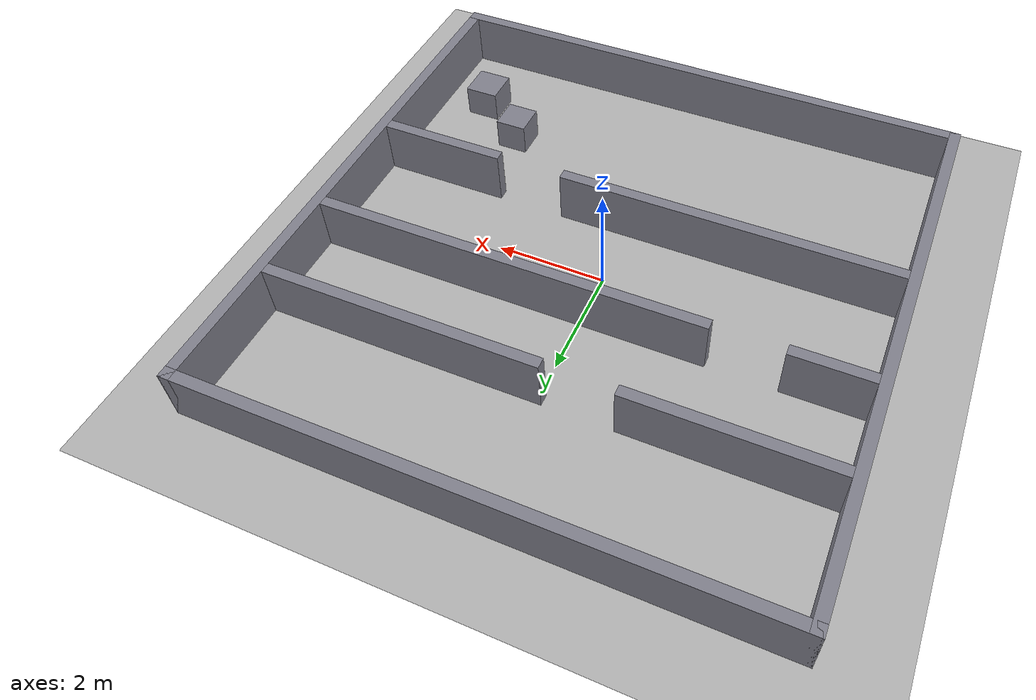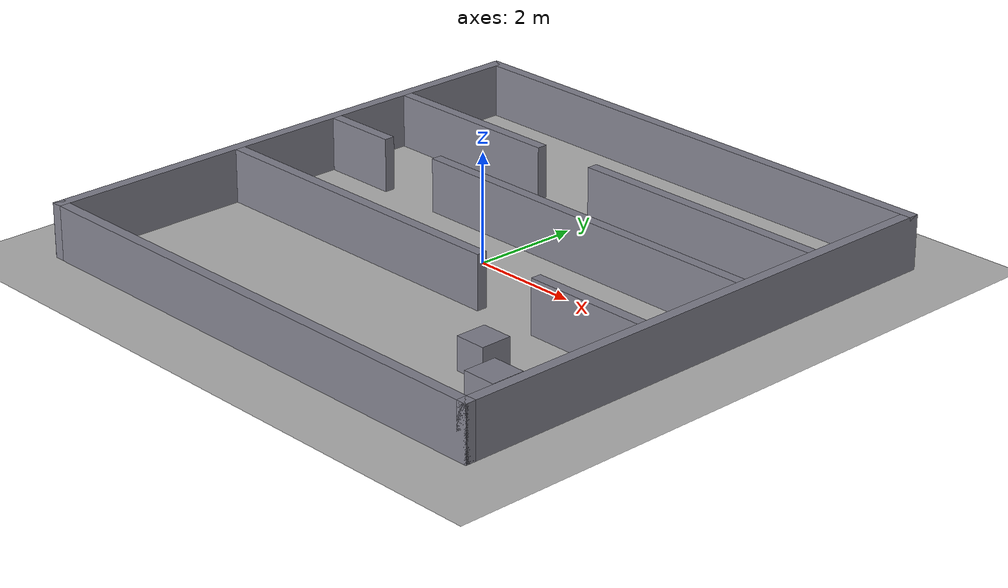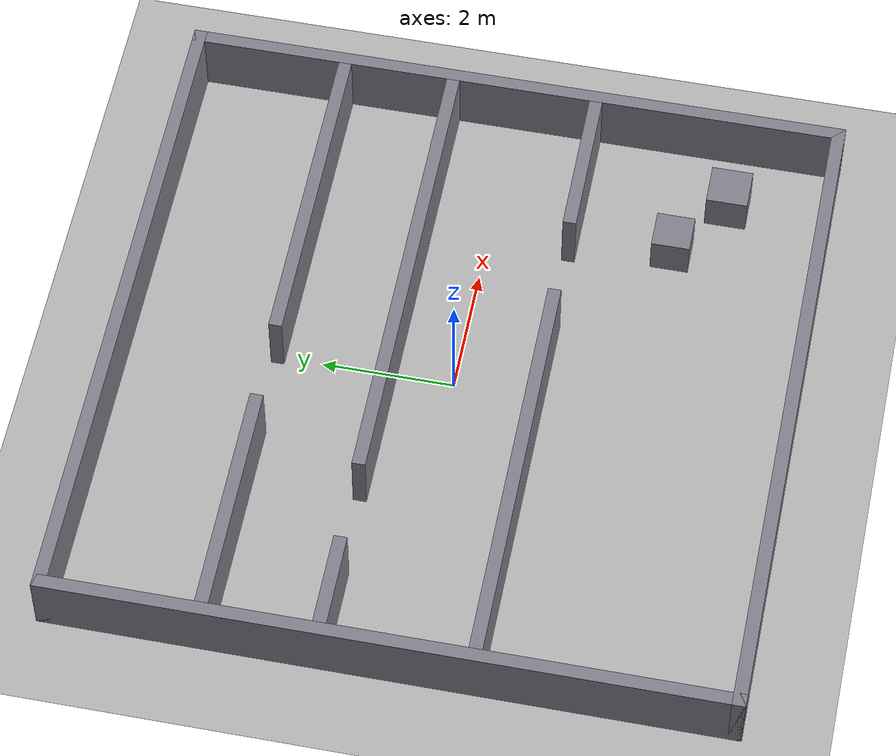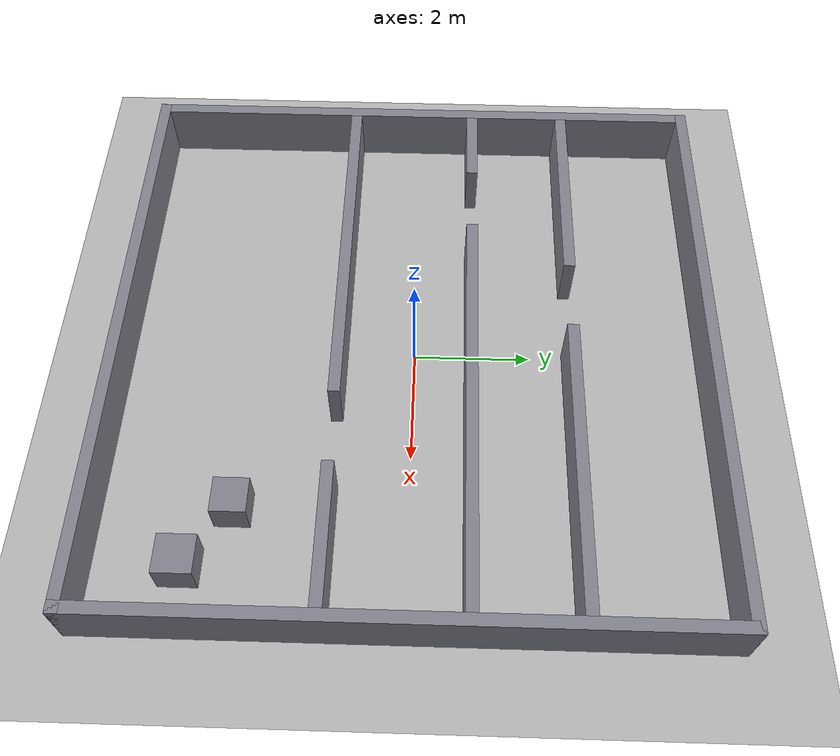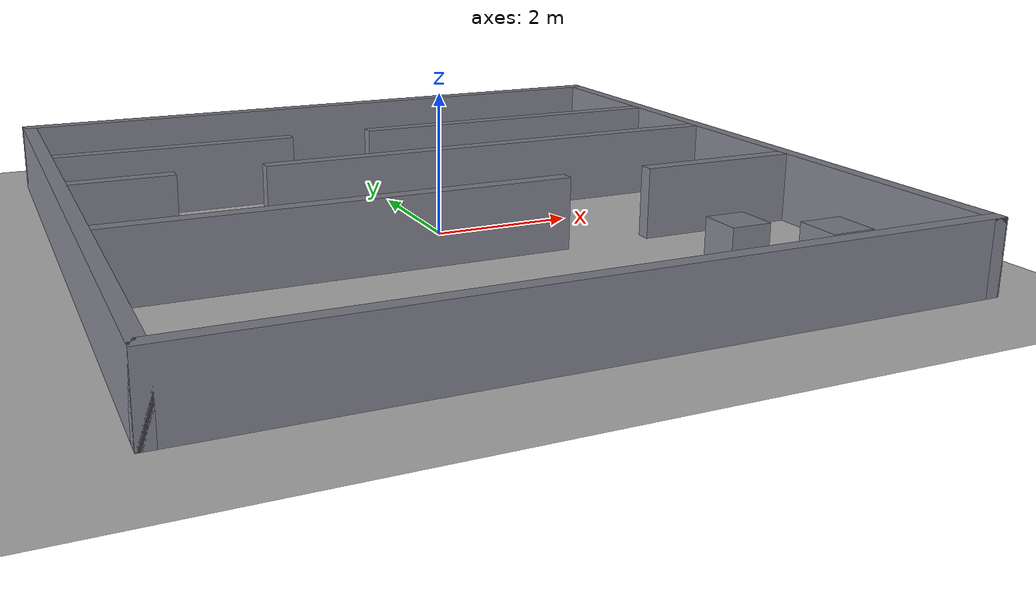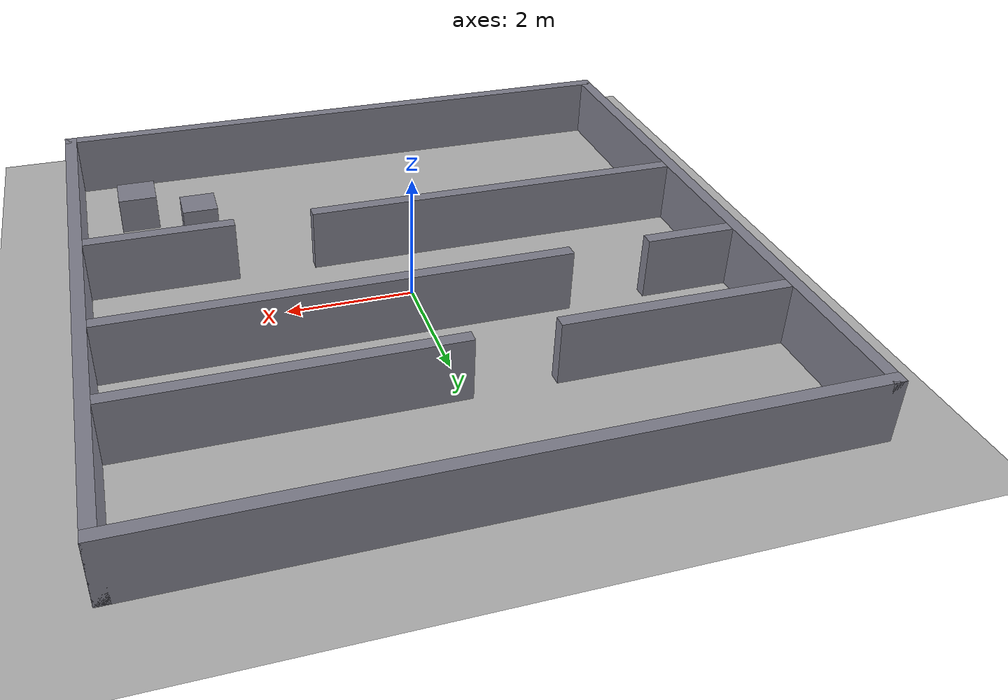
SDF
<?xml version="1.0"?>
<sdf version="1.10">
  <world name="scenario_17">
    <physics name="fast" type="ignored">
      <max_step_size>0.005</max_step_size>
      <real_time_factor>1.0</real_time_factor>
      <real_time_update_rate>200</real_time_update_rate>
    </physics>
    <plugin filename="gz-sim-physics-system" name="gz::sim::systems::Physics"/>
    <plugin filename="gz-sim-user-commands-system" name="gz::sim::systems::UserCommands"/>
    <plugin filename="gz-sim-scene-broadcaster-system" name="gz::sim::systems::SceneBroadcaster"/>
    <plugin filename="gz-sim-sensors-system" name="gz::sim::systems::Sensors">
      <render_engine>ogre2</render_engine>
    </plugin>
    <light type="directional" name="sun">
      <cast_shadows>false</cast_shadows>
      <pose>0 0 10 0 0 0</pose>
      <diffuse>0.9 0.9 0.9 1</diffuse>
      <direction>-0.5 0.2 -0.9</direction>
    </light>
    <model name="ground_plane">
      <static>true</static>
      <link name="link">
        <collision name="c"><geometry><plane><normal>0 0 1</normal><size>20 20</size></plane></geometry></collision>
        <visual name="v"><geometry><plane><normal>0 0 1</normal><size>20 20</size></plane></geometry>
          <material><ambient>0.7 0.7 0.7 1</ambient><diffuse>0.7 0.7 0.7 1</diffuse></material></visual>
      </link>
    </model>
    <model name="box_0">
      <static>true</static>
      <pose>0.0 5.0 0.5 0 0 0</pose>
      <link name="link">
        <collision name="c"><geometry><box><size>10.2 0.2 1.0</size></box></geometry></collision>
        <visual name="v"><geometry><box><size>10.2 0.2 1.0</size></box></geometry>
          <material><ambient>0.5 0.5 0.55 1</ambient><diffuse>0.5 0.5 0.55 1</diffuse></material></visual>
      </link>
    </model>
    <model name="box_1">
      <static>true</static>
      <pose>0.0 -5.0 0.5 0 0 0</pose>
      <link name="link">
        <collision name="c"><geometry><box><size>10.2 0.2 1.0</size></box></geometry></collision>
        <visual name="v"><geometry><box><size>10.2 0.2 1.0</size></box></geometry>
          <material><ambient>0.5 0.5 0.55 1</ambient><diffuse>0.5 0.5 0.55 1</diffuse></material></visual>
      </link>
    </model>
    <model name="box_2">
      <static>true</static>
      <pose>5.0 0.0 0.5 0 0 0</pose>
      <link name="link">
        <collision name="c"><geometry><box><size>0.2 10.2 1.0</size></box></geometry></collision>
        <visual name="v"><geometry><box><size>0.2 10.2 1.0</size></box></geometry>
          <material><ambient>0.5 0.5 0.55 1</ambient><diffuse>0.5 0.5 0.55 1</diffuse></material></visual>
      </link>
    </model>
    <model name="box_3">
      <static>true</static>
      <pose>-5.0 0.0 0.5 0 0 0</pose>
      <link name="link">
        <collision name="c"><geometry><box><size>0.2 10.2 1.0</size></box></geometry></collision>
        <visual name="v"><geometry><box><size>0.2 10.2 1.0</size></box></geometry>
          <material><ambient>0.5 0.5 0.55 1</ambient><diffuse>0.5 0.5 0.55 1</diffuse></material></visual>
      </link>
    </model>
    <model name="box_4">
      <static>true</static>
      <pose>-1.7860467776594935 -1.26 0.5 0 0 0</pose>
      <link name="link">
        <collision name="c"><geometry><box><size>6.227906444681014 0.2 1.0</size></box></geometry></collision>
        <visual name="v"><geometry><box><size>6.227906444681014 0.2 1.0</size></box></geometry>
          <material><ambient>0.5 0.5 0.55 1</ambient><diffuse>0.5 0.5 0.55 1</diffuse></material></visual>
      </link>
    </model>
    <model name="box_5">
      <static>true</static>
      <pose>3.733953222340507 -1.26 0.5 0 0 0</pose>
      <link name="link">
        <collision name="c"><geometry><box><size>2.3320935553189868 0.2 1.0</size></box></geometry></collision>
        <visual name="v"><geometry><box><size>2.3320935553189868 0.2 1.0</size></box></geometry>
          <material><ambient>0.5 0.5 0.55 1</ambient><diffuse>0.5 0.5 0.55 1</diffuse></material></visual>
      </link>
    </model>
    <model name="box_6">
      <static>true</static>
      <pose>-4.1868069009630045 0.97 0.5 0 0 0</pose>
      <link name="link">
        <collision name="c"><geometry><box><size>1.426386198073991 0.2 1.0</size></box></geometry></collision>
        <visual name="v"><geometry><box><size>1.426386198073991 0.2 1.0</size></box></geometry>
          <material><ambient>0.5 0.5 0.55 1</ambient><diffuse>0.5 0.5 0.55 1</diffuse></material></visual>
      </link>
    </model>
    <model name="box_7">
      <static>true</static>
      <pose>1.3331930990369956 0.97 0.5 0 0 0</pose>
      <link name="link">
        <collision name="c"><geometry><box><size>7.13361380192601 0.2 1.0</size></box></geometry></collision>
        <visual name="v"><geometry><box><size>7.13361380192601 0.2 1.0</size></box></geometry>
          <material><ambient>0.5 0.5 0.55 1</ambient><diffuse>0.5 0.5 0.55 1</diffuse></material></visual>
      </link>
    </model>
    <model name="box_8">
      <static>true</static>
      <pose>-3.12017717090695 2.67 0.5 0 0 0</pose>
      <link name="link">
        <collision name="c"><geometry><box><size>3.559645658186101 0.2 1.0</size></box></geometry></collision>
        <visual name="v"><geometry><box><size>3.559645658186101 0.2 1.0</size></box></geometry>
          <material><ambient>0.5 0.5 0.55 1</ambient><diffuse>0.5 0.5 0.55 1</diffuse></material></visual>
      </link>
    </model>
    <model name="box_9">
      <static>true</static>
      <pose>2.3998228290930506 2.67 0.5 0 0 0</pose>
      <link name="link">
        <collision name="c"><geometry><box><size>5.0003543418139 0.2 1.0</size></box></geometry></collision>
        <visual name="v"><geometry><box><size>5.0003543418139 0.2 1.0</size></box></geometry>
          <material><ambient>0.5 0.5 0.55 1</ambient><diffuse>0.5 0.5 0.55 1</diffuse></material></visual>
      </link>
    </model>
    <model name="box_10">
      <static>true</static>
      <pose>3.99 -3.5 0.3 0 0 0</pose>
      <link name="link">
        <collision name="c"><geometry><box><size>0.63 0.63 0.6</size></box></geometry></collision>
        <visual name="v"><geometry><box><size>0.63 0.63 0.6</size></box></geometry>
          <material><ambient>0.5 0.5 0.55 1</ambient><diffuse>0.5 0.5 0.55 1</diffuse></material></visual>
      </link>
    </model>
    <model name="box_11">
      <static>true</static>
      <pose>3.0 -2.79 0.3 0 0 0</pose>
      <link name="link">
        <collision name="c"><geometry><box><size>0.58 0.58 0.6</size></box></geometry></collision>
        <visual name="v"><geometry><box><size>0.58 0.58 0.6</size></box></geometry>
          <material><ambient>0.5 0.5 0.55 1</ambient><diffuse>0.5 0.5 0.55 1</diffuse></material></visual>
      </link>
    </model>
  </world>
</sdf>
